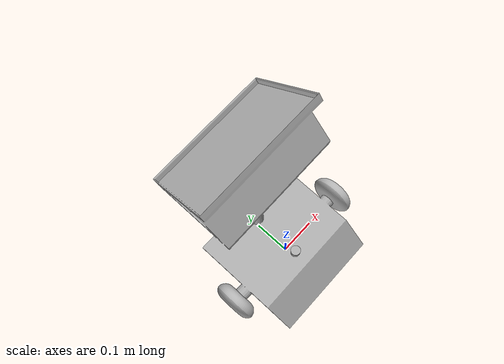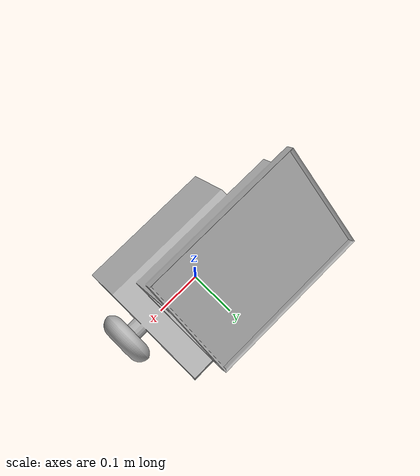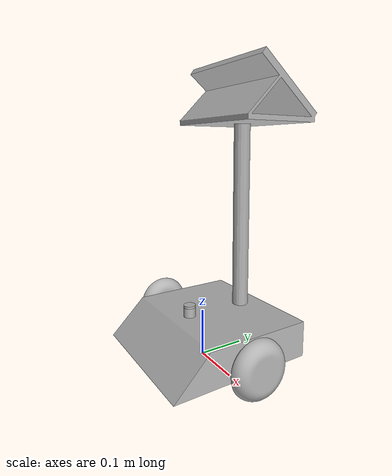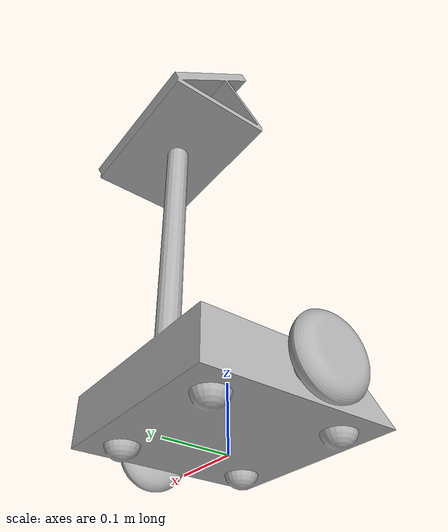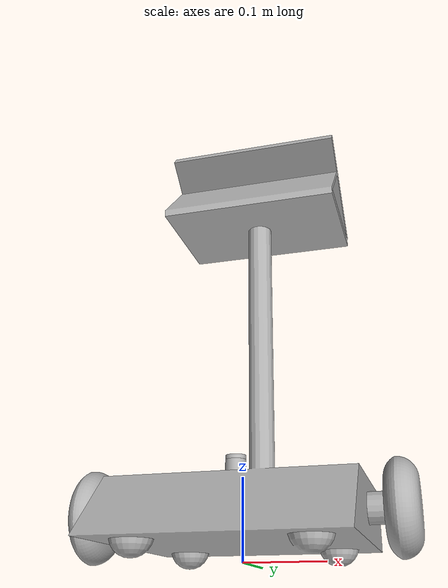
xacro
<?xml version="1.0" ?>
<robot name="ros_bot" xmlns:xacro="http://www.ros.org/wiki/xacro">

<xacro:include filename="$(find ros_bot_description)/urdf/materials.xacro" />
<xacro:include filename="$(find ros_bot_description)/urdf/ros_bot.trans" />
<xacro:include filename="$(find ros_bot_description)/urdf/ros_bot.gazebo" />
<link name="base_link">
  <inertial>
    <origin xyz="2.8192563140708175e-05 0.030137467414086388 0.11693037381955401" rpy="0 0 0"/>
    <mass value="8.536097253284687"/>
    <inertia ixx="0.252394" iyy="0.259907" izz="0.112336" ixy="-2.1e-05" iyz="-0.036873" ixz="-0.000107"/>
  </inertial>
  <visual>
    <origin xyz="0 0 0" rpy="0 0 0"/>
    <geometry>
      <mesh filename="package://ros_bot_description/meshes/base_link.stl" scale="0.001 0.001 0.001"/>
    </geometry>
    <material name="silver"/>
  </visual>
  <collision>
    <origin xyz="0 0 0" rpy="0 0 0"/>
    <geometry>
      <mesh filename="package://ros_bot_description/meshes/base_link.stl" scale="0.001 0.001 0.001"/>
    </geometry>
  </collision>
</link>

<link name="wheel1_1">
  <inertial>
    <origin xyz="0.019632763508257156 -6.682300888679772e-18 1.3877787807814457e-17" rpy="0 0 0"/>
    <mass value="0.31644417347388204"/>
    <inertia ixx="0.000445" iyy="0.000257" izz="0.000257" ixy="-0.0" iyz="-0.0" ixz="0.0"/>
  </inertial>
  <visual>
    <origin xyz="-0.17 -0.0 -0.0575" rpy="0 0 0"/>
    <geometry>
      <mesh filename="package://ros_bot_description/meshes/wheel1_1.stl" scale="0.001 0.001 0.001"/>
    </geometry>
    <material name="silver"/>
  </visual>
  <collision>
    <origin xyz="-0.17 -0.0 -0.0575" rpy="0 0 0"/>
    <geometry>
      <mesh filename="package://ros_bot_description/meshes/wheel1_1.stl" scale="0.001 0.001 0.001"/>
    </geometry>
  </collision>
</link>

<link name="wheel2_1">
  <inertial>
    <origin xyz="-0.020367236491742796 -6.682300888679772e-18 1.3877787807814457e-17" rpy="0 0 0"/>
    <mass value="0.31644417347388204"/>
    <inertia ixx="0.000445" iyy="0.000257" izz="0.000257" ixy="0.0" iyz="-0.0" ixz="0.0"/>
  </inertial>
  <visual>
    <origin xyz="0.17 -0.0 -0.0575" rpy="0 0 0"/>
    <geometry>
      <mesh filename="package://ros_bot_description/meshes/wheel2_1.stl" scale="0.001 0.001 0.001"/>
    </geometry>
    <material name="silver"/>
  </visual>
  <collision>
    <origin xyz="0.17 -0.0 -0.0575" rpy="0 0 0"/>
    <geometry>
      <mesh filename="package://ros_bot_description/meshes/wheel2_1.stl" scale="0.001 0.001 0.001"/>
    </geometry>
  </collision>
</link>

<link name="lidar_base_1">
  <inertial>
    <origin xyz="-5.0113493329076324e-18 -0.06999999999999959 0.010000000000000217" rpy="0 0 0"/>
    <mass value="0.012762720155208539"/>
    <inertia ixx="1e-06" iyy="1e-06" izz="1e-06" ixy="-0.0" iyz="-0.0" ixz="0.0"/>
  </inertial>
  <visual>
    <origin xyz="-0.0 -0.0375 -0.095" rpy="0 0 0"/>
    <geometry>
      <mesh filename="package://ros_bot_description/meshes/lidar_base_1.stl" scale="0.001 0.001 0.001"/>
    </geometry>
    <material name="silver"/>
  </visual>
  <collision>
    <origin xyz="-0.0 -0.0375 -0.095" rpy="0 0 0"/>
    <geometry>
      <mesh filename="package://ros_bot_description/meshes/lidar_base_1.stl" scale="0.001 0.001 0.001"/>
    </geometry>
  </collision>
</link>

<link name="lidar_1">
  <inertial>
    <origin xyz="-1.5652218718098524e-17 -2.7755575615628914e-17 0.0025000000000001132" rpy="0 0 0"/>
    <mass value="0.002601631416254046"/>
    <inertia ixx="0.0" iyy="0.0" izz="0.0" ixy="0.0" iyz="-0.0" ixz="0.0"/>
  </inertial>
  <visual>
    <origin xyz="0.0 0.0325 -0.115" rpy="0 0 0"/>
    <geometry>
      <mesh filename="package://ros_bot_description/meshes/lidar_1.stl" scale="0.001 0.001 0.001"/>
    </geometry>
    <material name="silver"/>
  </visual>
  <collision>
    <origin xyz="0.0 0.0325 -0.115" rpy="0 0 0"/>
    <geometry>
      <mesh filename="package://ros_bot_description/meshes/lidar_1.stl" scale="0.001 0.001 0.001"/>
    </geometry>
  </collision>
</link>

<joint name="Revolute 5" type="continuous">
  <origin xyz="0.17 0.0 0.0575" rpy="0 0 0"/>
  <parent link="base_link"/>
  <child link="wheel1_1"/>
  <axis xyz="1.0 0.0 0.0"/>
</joint>

<joint name="Revolute 6" type="continuous">
  <origin xyz="-0.17 0.0 0.0575" rpy="0 0 0"/>
  <parent link="base_link"/>
  <child link="wheel2_1"/>
  <axis xyz="-1.0 0.0 0.0"/>
</joint>

<joint name="Rigid 7" type="fixed">
  <origin xyz="0.0 0.0375 0.095" rpy="0 0 0"/>
  <parent link="base_link"/>
  <child link="lidar_base_1"/>
</joint>

<joint name="Revolute 8" type="continuous">
  <origin xyz="-0.0 -0.07 0.02" rpy="0 0 0"/>
  <parent link="lidar_base_1"/>
  <child link="lidar_1"/>
  <axis xyz="0.0 0.0 1.0"/>
</joint>

</robot>

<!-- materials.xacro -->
<robot name="ros_bot" xmlns:xacro="http://www.ros.org/wiki/xacro" >

<material name="silver">
  <color rgba="0.700 0.700 0.700 1.000"/>
</material>

</robot>

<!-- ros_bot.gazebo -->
<robot name="ros_bot" xmlns:xacro="http://www.ros.org/wiki/xacro" >

<xacro:property name="body_color" value="Gazebo/Silver" />

<gazebo>
  <plugin name="control" filename="libgazebo_ros_control.so"/>
</gazebo>
<gazebo reference="base_link">
  <material>${body_color}</material>
  <mu1>0.1</mu1>
  <mu2>0.1</mu2>
  <selfCollide>true</selfCollide>
  <gravity>true</gravity>
</gazebo>

<gazebo reference="wheel1_1">
  <material>${body_color}</material>
  <mu1>1500</mu1>
  <mu2>1500</mu2>
  <selfCollide>true</selfCollide>
</gazebo>

<gazebo reference="wheel2_1">
  <material>${body_color}</material>
  <mu1>1500</mu1>
  <mu2>1500</mu2>
  <selfCollide>true</selfCollide>
</gazebo>

<gazebo reference="lidar_base_1">
  <material>${body_color}</material>
  <mu1>0.2</mu1>
  <mu2>0.2</mu2>
  <selfCollide>true</selfCollide>
</gazebo>

<gazebo reference="lidar_1">
  <material>${body_color}</material>
  <mu1>0.2</mu1>
  <mu2>0.2</mu2>
  <selfCollide>true</selfCollide>
</gazebo>
<gazebo>
  <plugin name="differential_drive_controller" filename="libgazebo_ros_diff_drive.so">

    <!-- Plugin update rate in Hz -->
    <updateRate>100</updateRate>

    <!-- Name of left joint, defaults to `left_joint` -->
    <leftJoint>Revolute 5</leftJoint>

    <!-- Name of right joint, defaults to `right_joint` -->
    <rightJoint>Revolute 6</rightJoint>

    <!-- The distance from the center of one wheel to the other, in meters, defaults to 0.34 m -->
    <wheelSeparation>0.34</wheelSeparation>

    <!-- Diameter of the wheels, in meters, defaults to 0.15 m -->
    <wheelDiameter>0.115</wheelDiameter>

    <!-- Wheel acceleration, in rad/s^2, defaults to 0.0 rad/s^2 -->
    <wheelAcceleration>1.0</wheelAcceleration>

    <!-- Maximum torque which the wheels can produce, in Nm, defaults to 5 Nm -->
    <wheelTorque>20</wheelTorque>

    <!-- Topic to receive geometry_msgs/Twist message commands, defaults to `cmd_vel` -->
    <commandTopic>cmd_vel</commandTopic>

    <!-- Topic to publish nav_msgs/Odometry messages, defaults to `odom` -->
    <odometryTopic>odom</odometryTopic>

    <!-- Odometry frame, defaults to `odom` -->
    <odometryFrame>odom</odometryFrame>

    <!-- Robot frame to calculate odometry from, defaults to `base_footprint` -->
    <robotBaseFrame>base_link</robotBaseFrame>

    <!-- Odometry source, 0 for ENCODER, 1 for WORLD, defaults to WORLD -->
    <odometrySource>1</odometrySource>

    <!-- Set to true to publish transforms for the wheel links, defaults to false -->
    <publishWheelTF>true</publishWheelTF>

    <!-- Set to true to publish transforms for the odometry, defaults to true -->
    <publishOdom>true</publishOdom>

    <!-- Set to true to publish sensor_msgs/JointState on /joint_states for the wheel joints, defaults to false -->
    <publishWheelJointState>true</publishWheelJointState>

    <!-- Set to true to swap right and left wheels, defaults to true -->
    <legacyMode>false</legacyMode>
  </plugin>
</gazebo>

</robot>
